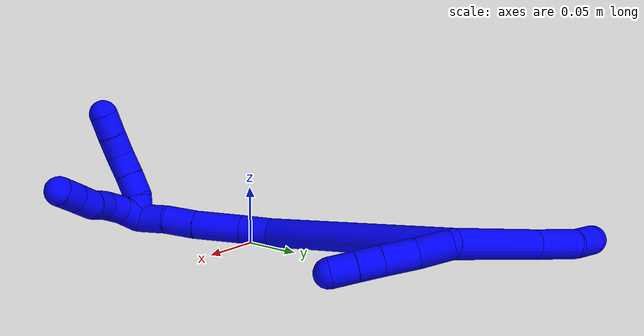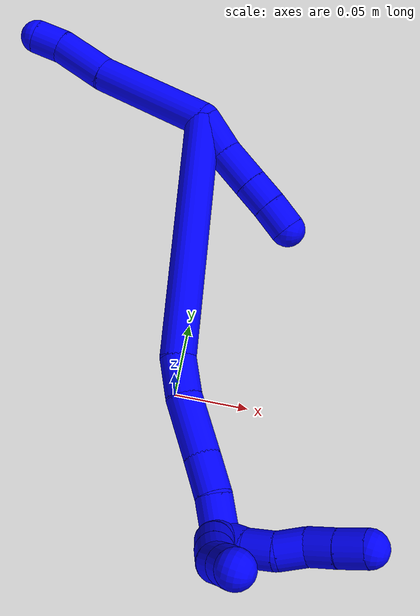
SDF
<sdf version="1.7">
 <world name="default">
  <model name="1">
   <static>0</static>
   <link name="1">
    <collision name="collision-cylinder-e_1_2_8">
     <pose>-0.000163 0.007735 0.042439 -0.180294 -0.003787 0.000342</pose>
     <geometry><cylinder><radius>0.0125</radius><length>0.086277</length></cylinder></geometry>
     <surface>
      <friction><ode><mu>1.16</mu><mu2>1.16</mu2><slip1>0</slip1><slip2>0</slip2></ode></friction>
      <contact><ode><kp>1e+06</kp><kd>1</kd><max_vel>0</max_vel><min_depth>0.001</min_depth></ode></contact>
     </surface>
    </collision>
    <visual name="visual-cylinder-e_1_2_8">
     <pose>-0.000163 0.007735 0.042439 -0.180294 -0.003787 0.000342</pose>
     <geometry><cylinder><radius>0.0125</radius><length>0.086277</length></cylinder></geometry>
     <material><ambient>0 0 1 1</ambient></material>
    </visual>
    <collision name="collision-cylinder-e_2_8_9">
     <pose>-0.000908 0.022022 0.104642 -0.320055 -0.027932 0.004509</pose>
     <geometry><cylinder><radius>0.0125</radius><length>0.041659</length></cylinder></geometry>
     <surface>
      <friction><ode><mu>1.16</mu><mu2>1.16</mu2><slip1>0</slip1><slip2>0</slip2></ode></friction>
      <contact><ode><kp>1e+06</kp><kd>1</kd><max_vel>0</max_vel><min_depth>0.001</min_depth></ode></contact>
     </surface>
    </collision>
    <visual name="visual-cylinder-e_2_8_9">
     <pose>-0.000908 0.022022 0.104642 -0.320055 -0.027932 0.004509</pose>
     <geometry><cylinder><radius>0.0125</radius><length>0.041659</length></cylinder></geometry>
     <material><ambient>0 0 1 1</ambient></material>
    </visual>
    <collision name="collision-cylinder-e_3_9_6">
     <pose>0.000438 0.030211 0.135144 -0.151407 0.175658 -0.013358</pose>
     <geometry><cylinder><radius>0.0125</radius><length>0.022064</length></cylinder></geometry>
     <surface>
      <friction><ode><mu>1.16</mu><mu2>1.16</mu2><slip1>0</slip1><slip2>0</slip2></ode></friction>
      <contact><ode><kp>1e+06</kp><kd>1</kd><max_vel>0</max_vel><min_depth>0.001</min_depth></ode></contact>
     </surface>
    </collision>
    <visual name="visual-cylinder-e_3_9_6">
     <pose>0.000438 0.030211 0.135144 -0.151407 0.175658 -0.013358</pose>
     <geometry><cylinder><radius>0.0125</radius><length>0.022064</length></cylinder></geometry>
     <material><ambient>0 0 1 1</ambient></material>
    </visual>
    <collision name="collision-cylinder-e_1_2_10">
     <pose>-0.001604 -0.009785 -0.010463 2.38966 -0.111513 -0.280928</pose>
     <geometry><cylinder><radius>0.0125</radius><length>0.028831</length></cylinder></geometry>
     <surface>
      <friction><ode><mu>1.16</mu><mu2>1.16</mu2><slip1>0</slip1><slip2>0</slip2></ode></friction>
      <contact><ode><kp>1e+06</kp><kd>1</kd><max_vel>0</max_vel><min_depth>0.001</min_depth></ode></contact>
     </surface>
    </collision>
    <visual name="visual-cylinder-e_1_2_10">
     <pose>-0.001604 -0.009785 -0.010463 2.38966 -0.111513 -0.280928</pose>
     <geometry><cylinder><radius>0.0125</radius><length>0.028831</length></cylinder></geometry>
     <material><ambient>0 0 1 1</ambient></material>
    </visual>
    <collision name="collision-cylinder-e_2_10_11">
     <pose>-0.004392 -0.027812 -0.03261 2.52726 -0.082565 -0.258978</pose>
     <geometry><cylinder><radius>0.0125</radius><length>0.028694</length></cylinder></geometry>
     <surface>
      <friction><ode><mu>1.16</mu><mu2>1.16</mu2><slip1>0</slip1><slip2>0</slip2></ode></friction>
      <contact><ode><kp>1e+06</kp><kd>1</kd><max_vel>0</max_vel><min_depth>0.001</min_depth></ode></contact>
     </surface>
    </collision>
    <visual name="visual-cylinder-e_2_10_11">
     <pose>-0.004392 -0.027812 -0.03261 2.52726 -0.082565 -0.258978</pose>
     <geometry><cylinder><radius>0.0125</radius><length>0.028694</length></cylinder></geometry>
     <material><ambient>0 0 1 1</ambient></material>
    </visual>
    <collision name="collision-cylinder-e_3_11_12">
     <pose>-0.00658 -0.042012 -0.052735 2.52696 -0.096971 -0.303434</pose>
     <geometry><cylinder><radius>0.0125</radius><length>0.020761</length></cylinder></geometry>
     <surface>
      <friction><ode><mu>1.16</mu><mu2>1.16</mu2><slip1>0</slip1><slip2>0</slip2></ode></friction>
      <contact><ode><kp>1e+06</kp><kd>1</kd><max_vel>0</max_vel><min_depth>0.001</min_depth></ode></contact>
     </surface>
    </collision>
    <visual name="visual-cylinder-e_3_11_12">
     <pose>-0.00658 -0.042012 -0.052735 2.52696 -0.096971 -0.303434</pose>
     <geometry><cylinder><radius>0.0125</radius><length>0.020761</length></cylinder></geometry>
     <material><ambient>0 0 1 1</ambient></material>
    </visual>
    <collision name="collision-cylinder-e_4_12_5">
     <pose>-0.008631 -0.054658 -0.069663 2.47416 -0.09652 -0.276844</pose>
     <geometry><cylinder><radius>0.0125</radius><length>0.021714</length></cylinder></geometry>
     <surface>
      <friction><ode><mu>1.16</mu><mu2>1.16</mu2><slip1>0</slip1><slip2>0</slip2></ode></friction>
      <contact><ode><kp>1e+06</kp><kd>1</kd><max_vel>0</max_vel><min_depth>0.001</min_depth></ode></contact>
     </surface>
    </collision>
    <visual name="visual-cylinder-e_4_12_5">
     <pose>-0.008631 -0.054658 -0.069663 2.47416 -0.09652 -0.276844</pose>
     <geometry><cylinder><radius>0.0125</radius><length>0.021714</length></cylinder></geometry>
     <material><ambient>0 0 1 1</ambient></material>
    </visual>
    <collision name="collision-cylinder-e_1_2_13">
     <pose>0.027608 -0.079701 -0.022241 1.84293 0.322038 0.421556</pose>
     <geometry><cylinder><radius>0.0125</radius><length>0.17446</length></cylinder></geometry>
     <surface>
      <friction><ode><mu>1.16</mu><mu2>1.16</mu2><slip1>0</slip1><slip2>0</slip2></ode></friction>
      <contact><ode><kp>1e+06</kp><kd>1</kd><max_vel>0</max_vel><min_depth>0.001</min_depth></ode></contact>
     </surface>
    </collision>
    <visual name="visual-cylinder-e_1_2_13">
     <pose>0.027608 -0.079701 -0.022241 1.84293 0.322038 0.421556</pose>
     <geometry><cylinder><radius>0.0125</radius><length>0.17446</length></cylinder></geometry>
     <material><ambient>0 0 1 1</ambient></material>
    </visual>
    <collision name="collision-cylinder-e_2_13_14">
     <pose>0.059821 -0.170674 -0.051588 2.1333 0.3327 0.590862</pose>
     <geometry><cylinder><radius>0.0125</radius><length>0.028197</length></cylinder></geometry>
     <surface>
      <friction><ode><mu>1.16</mu><mu2>1.16</mu2><slip1>0</slip1><slip2>0</slip2></ode></friction>
      <contact><ode><kp>1e+06</kp><kd>1</kd><max_vel>0</max_vel><min_depth>0.001</min_depth></ode></contact>
     </surface>
    </collision>
    <visual name="visual-cylinder-e_2_13_14">
     <pose>0.059821 -0.170674 -0.051588 2.1333 0.3327 0.590862</pose>
     <geometry><cylinder><radius>0.0125</radius><length>0.028197</length></cylinder></geometry>
     <material><ambient>0 0 1 1</ambient></material>
    </visual>
    <collision name="collision-cylinder-e_3_14_15">
     <pose>0.070504 -0.197557 -0.071947 2.27464 0.288553 0.608328</pose>
     <geometry><cylinder><radius>0.0125</radius><length>0.042722</length></cylinder></geometry>
     <surface>
      <friction><ode><mu>1.16</mu><mu2>1.16</mu2><slip1>0</slip1><slip2>0</slip2></ode></friction>
      <contact><ode><kp>1e+06</kp><kd>1</kd><max_vel>0</max_vel><min_depth>0.001</min_depth></ode></contact>
     </surface>
    </collision>
    <visual name="visual-cylinder-e_3_14_15">
     <pose>0.070504 -0.197557 -0.071947 2.27464 0.288553 0.608328</pose>
     <geometry><cylinder><radius>0.0125</radius><length>0.042722</length></cylinder></geometry>
     <material><ambient>0 0 1 1</ambient></material>
    </visual>
    <collision name="collision-cylinder-e_4_15_16">
     <pose>0.081392 -0.222743 -0.093694 2.29654 0.359391 0.767954</pose>
     <geometry><cylinder><radius>0.0125</radius><length>0.027347</length></cylinder></geometry>
     <surface>
      <friction><ode><mu>1.16</mu><mu2>1.16</mu2><slip1>0</slip1><slip2>0</slip2></ode></friction>
      <contact><ode><kp>1e+06</kp><kd>1</kd><max_vel>0</max_vel><min_depth>0.001</min_depth></ode></contact>
     </surface>
    </collision>
    <visual name="visual-cylinder-e_4_15_16">
     <pose>0.081392 -0.222743 -0.093694 2.29654 0.359391 0.767954</pose>
     <geometry><cylinder><radius>0.0125</radius><length>0.027347</length></cylinder></geometry>
     <material><ambient>0 0 1 1</ambient></material>
    </visual>
    <collision name="collision-cylinder-e_5_16_1">
     <pose>0.090024 -0.243426 -0.109114 2.12826 0.284156 0.504497</pose>
     <geometry><cylinder><radius>0.0125</radius><length>0.027275</length></cylinder></geometry>
     <surface>
      <friction><ode><mu>1.16</mu><mu2>1.16</mu2><slip1>0</slip1><slip2>0</slip2></ode></friction>
      <contact><ode><kp>1e+06</kp><kd>1</kd><max_vel>0</max_vel><min_depth>0.001</min_depth></ode></contact>
     </surface>
    </collision>
    <visual name="visual-cylinder-e_5_16_1">
     <pose>0.090024 -0.243426 -0.109114 2.12826 0.284156 0.504497</pose>
     <geometry><cylinder><radius>0.0125</radius><length>0.027275</length></cylinder></geometry>
     <material><ambient>0 0 1 1</ambient></material>
    </visual>
    <collision name="collision-cylinder-e_1_1_17">
     <pose>0.103568 -0.252369 -0.116946 -1.96712 1.33387 -1.73796</pose>
     <geometry><cylinder><radius>0.0125</radius><length>0.02</length></cylinder></geometry>
     <surface>
      <friction><ode><mu>1.16</mu><mu2>1.16</mu2><slip1>0</slip1><slip2>0</slip2></ode></friction>
      <contact><ode><kp>1e+06</kp><kd>1</kd><max_vel>0</max_vel><min_depth>0.001</min_depth></ode></contact>
     </surface>
    </collision>
    <visual name="visual-cylinder-e_1_1_17">
     <pose>0.103568 -0.252369 -0.116946 -1.96712 1.33387 -1.73796</pose>
     <geometry><cylinder><radius>0.0125</radius><length>0.02</length></cylinder></geometry>
     <material><ambient>0 0 1 1</ambient></material>
    </visual>
    <collision name="collision-cylinder-e_2_17_18">
     <pose>0.12258 -0.2497 -0.121513 -3.00495 1.19228 -2.94056</pose>
     <geometry><cylinder><radius>0.0125</radius><length>0.02</length></cylinder></geometry>
     <surface>
      <friction><ode><mu>1.16</mu><mu2>1.16</mu2><slip1>0</slip1><slip2>0</slip2></ode></friction>
      <contact><ode><kp>1e+06</kp><kd>1</kd><max_vel>0</max_vel><min_depth>0.001</min_depth></ode></contact>
     </surface>
    </collision>
    <visual name="visual-cylinder-e_2_17_18">
     <pose>0.12258 -0.2497 -0.121513 -3.00495 1.19228 -2.94056</pose>
     <geometry><cylinder><radius>0.0125</radius><length>0.02</length></cylinder></geometry>
     <material><ambient>0 0 1 1</ambient></material>
    </visual>
    <collision name="collision-cylinder-e_3_18_19">
     <pose>0.141009 -0.24881 -0.12922 -3.04622 1.15223 -2.99493</pose>
     <geometry><cylinder><radius>0.0125</radius><length>0.02</length></cylinder></geometry>
     <surface>
      <friction><ode><mu>1.16</mu><mu2>1.16</mu2><slip1>0</slip1><slip2>0</slip2></ode></friction>
      <contact><ode><kp>1e+06</kp><kd>1</kd><max_vel>0</max_vel><min_depth>0.001</min_depth></ode></contact>
     </surface>
    </collision>
    <visual name="visual-cylinder-e_3_18_19">
     <pose>0.141009 -0.24881 -0.12922 -3.04622 1.15223 -2.99493</pose>
     <geometry><cylinder><radius>0.0125</radius><length>0.02</length></cylinder></geometry>
     <material><ambient>0 0 1 1</ambient></material>
    </visual>
    <collision name="collision-cylinder-e_4_19_20">
     <pose>0.157939 -0.24521 -0.138646 -2.60326 0.893497 -2.09666</pose>
     <geometry><cylinder><radius>0.0125</radius><length>0.02</length></cylinder></geometry>
     <surface>
      <friction><ode><mu>1.16</mu><mu2>1.16</mu2><slip1>0</slip1><slip2>0</slip2></ode></friction>
      <contact><ode><kp>1e+06</kp><kd>1</kd><max_vel>0</max_vel><min_depth>0.001</min_depth></ode></contact>
     </surface>
    </collision>
    <visual name="visual-cylinder-e_4_19_20">
     <pose>0.157939 -0.24521 -0.138646 -2.60326 0.893497 -2.09666</pose>
     <geometry><cylinder><radius>0.0125</radius><length>0.02</length></cylinder></geometry>
     <material><ambient>0 0 1 1</ambient></material>
    </visual>
    <collision name="collision-cylinder-e_5_20_4">
     <pose>0.173818 -0.238978 -0.149076 -2.60281 0.941847 -2.14776</pose>
     <geometry><cylinder><radius>0.0125</radius><length>0.02</length></cylinder></geometry>
     <surface>
      <friction><ode><mu>1.16</mu><mu2>1.16</mu2><slip1>0</slip1><slip2>0</slip2></ode></friction>
      <contact><ode><kp>1e+06</kp><kd>1</kd><max_vel>0</max_vel><min_depth>0.001</min_depth></ode></contact>
     </surface>
    </collision>
    <visual name="visual-cylinder-e_5_20_4">
     <pose>0.173818 -0.238978 -0.149076 -2.60281 0.941847 -2.14776</pose>
     <geometry><cylinder><radius>0.0125</radius><length>0.02</length></cylinder></geometry>
     <material><ambient>0 0 1 1</ambient></material>
    </visual>
    <collision name="collision-cylinder-e_1_1_21">
     <pose>0.096612 -0.253384 -0.125581 -3.0216 0.280194 -2.33621</pose>
     <geometry><cylinder><radius>0.0125</radius><length>0.02</length></cylinder></geometry>
     <surface>
      <friction><ode><mu>1.16</mu><mu2>1.16</mu2><slip1>0</slip1><slip2>0</slip2></ode></friction>
      <contact><ode><kp>1e+06</kp><kd>1</kd><max_vel>0</max_vel><min_depth>0.001</min_depth></ode></contact>
     </surface>
    </collision>
    <visual name="visual-cylinder-e_1_1_21">
     <pose>0.096612 -0.253384 -0.125581 -3.0216 0.280194 -2.33621</pose>
     <geometry><cylinder><radius>0.0125</radius><length>0.02</length></cylinder></geometry>
     <material><ambient>0 0 1 1</ambient></material>
    </visual>
    <collision name="collision-cylinder-e_2_21_22">
     <pose>0.099712 -0.249768 -0.144807 -2.89232 0.033453 -0.265466</pose>
     <geometry><cylinder><radius>0.0125</radius><length>0.02</length></cylinder></geometry>
     <surface>
      <friction><ode><mu>1.16</mu><mu2>1.16</mu2><slip1>0</slip1><slip2>0</slip2></ode></friction>
      <contact><ode><kp>1e+06</kp><kd>1</kd><max_vel>0</max_vel><min_depth>0.001</min_depth></ode></contact>
     </surface>
    </collision>
    <visual name="visual-cylinder-e_2_21_22">
     <pose>0.099712 -0.249768 -0.144807 -2.89232 0.033453 -0.265466</pose>
     <geometry><cylinder><radius>0.0125</radius><length>0.02</length></cylinder></geometry>
     <material><ambient>0 0 1 1</ambient></material>
    </visual>
    <collision name="collision-cylinder-e_3_22_23">
     <pose>0.098088 -0.242996 -0.163303 -2.68698 -0.197187 0.80821</pose>
     <geometry><cylinder><radius>0.0125</radius><length>0.02</length></cylinder></geometry>
     <surface>
      <friction><ode><mu>1.16</mu><mu2>1.16</mu2><slip1>0</slip1><slip2>0</slip2></ode></friction>
      <contact><ode><kp>1e+06</kp><kd>1</kd><max_vel>0</max_vel><min_depth>0.001</min_depth></ode></contact>
     </surface>
    </collision>
    <visual name="visual-cylinder-e_3_22_23">
     <pose>0.098088 -0.242996 -0.163303 -2.68698 -0.197187 0.80821</pose>
     <geometry><cylinder><radius>0.0125</radius><length>0.02</length></cylinder></geometry>
     <material><ambient>0 0 1 1</ambient></material>
    </visual>
    <collision name="collision-cylinder-e_4_23_24">
     <pose>0.097349 -0.235458 -0.181497 -2.80993 0.122336 -0.701585</pose>
     <geometry><cylinder><radius>0.0125</radius><length>0.02</length></cylinder></geometry>
     <surface>
      <friction><ode><mu>1.16</mu><mu2>1.16</mu2><slip1>0</slip1><slip2>0</slip2></ode></friction>
      <contact><ode><kp>1e+06</kp><kd>1</kd><max_vel>0</max_vel><min_depth>0.001</min_depth></ode></contact>
     </surface>
    </collision>
    <visual name="visual-cylinder-e_4_23_24">
     <pose>0.097349 -0.235458 -0.181497 -2.80993 0.122336 -0.701585</pose>
     <geometry><cylinder><radius>0.0125</radius><length>0.02</length></cylinder></geometry>
     <material><ambient>0 0 1 1</ambient></material>
    </visual>
    <collision name="collision-cylinder-e_5_24_3">
     <pose>0.099402 -0.22871 -0.200206 -2.78097 0.083356 -0.449795</pose>
     <geometry><cylinder><radius>0.0125</radius><length>0.02</length></cylinder></geometry>
     <surface>
      <friction><ode><mu>1.16</mu><mu2>1.16</mu2><slip1>0</slip1><slip2>0</slip2></ode></friction>
      <contact><ode><kp>1e+06</kp><kd>1</kd><max_vel>0</max_vel><min_depth>0.001</min_depth></ode></contact>
     </surface>
    </collision>
    <visual name="visual-cylinder-e_5_24_3">
     <pose>0.099402 -0.22871 -0.200206 -2.78097 0.083356 -0.449795</pose>
     <geometry><cylinder><radius>0.0125</radius><length>0.02</length></cylinder></geometry>
     <material><ambient>0 0 1 1</ambient></material>
    </visual>
    <collision name="collision-sphere-3">
     <pose>0.100234 -0.225194 -0.20953 0 -0 0</pose>
     <geometry><sphere><radius>0.0125</radius></sphere></geometry>
     <surface>
      <friction><ode><mu>1.16</mu><mu2>1.16</mu2><slip1>0</slip1><slip2>0</slip2></ode></friction>
      <contact><ode><kp>1e+06</kp><kd>1</kd><max_vel>0</max_vel><min_depth>0.001</min_depth></ode></contact>
     </surface>
    </collision>
    <visual name="visual-sphere-3">
     <pose>0.100234 -0.225194 -0.20953 0 -0 0</pose>
     <geometry><sphere><radius>0.0125</radius></sphere></geometry>
     <material><ambient>0 0 1 1</ambient></material>
    </visual>
    <collision name="collision-sphere-24">
     <pose>0.098569 -0.232227 -0.190882 0 -0 0</pose>
     <geometry><sphere><radius>0.0125</radius></sphere></geometry>
     <surface>
      <friction><ode><mu>1.16</mu><mu2>1.16</mu2><slip1>0</slip1><slip2>0</slip2></ode></friction>
      <contact><ode><kp>1e+06</kp><kd>1</kd><max_vel>0</max_vel><min_depth>0.001</min_depth></ode></contact>
     </surface>
    </collision>
    <visual name="visual-sphere-24">
     <pose>0.098569 -0.232227 -0.190882 0 -0 0</pose>
     <geometry><sphere><radius>0.0125</radius></sphere></geometry>
     <material><ambient>0 0 1 1</ambient></material>
    </visual>
    <collision name="collision-sphere-23">
     <pose>0.096129 -0.23869 -0.172113 0 -0 0</pose>
     <geometry><sphere><radius>0.0125</radius></sphere></geometry>
     <surface>
      <friction><ode><mu>1.16</mu><mu2>1.16</mu2><slip1>0</slip1><slip2>0</slip2></ode></friction>
      <contact><ode><kp>1e+06</kp><kd>1</kd><max_vel>0</max_vel><min_depth>0.001</min_depth></ode></contact>
     </surface>
    </collision>
    <visual name="visual-sphere-23">
     <pose>0.096129 -0.23869 -0.172113 0 -0 0</pose>
     <geometry><sphere><radius>0.0125</radius></sphere></geometry>
     <material><ambient>0 0 1 1</ambient></material>
    </visual>
    <collision name="collision-sphere-22">
     <pose>0.100047 -0.247302 -0.154493 0 -0 0</pose>
     <geometry><sphere><radius>0.0125</radius></sphere></geometry>
     <surface>
      <friction><ode><mu>1.16</mu><mu2>1.16</mu2><slip1>0</slip1><slip2>0</slip2></ode></friction>
      <contact><ode><kp>1e+06</kp><kd>1</kd><max_vel>0</max_vel><min_depth>0.001</min_depth></ode></contact>
     </surface>
    </collision>
    <visual name="visual-sphere-22">
     <pose>0.100047 -0.247302 -0.154493 0 -0 0</pose>
     <geometry><sphere><radius>0.0125</radius></sphere></geometry>
     <material><ambient>0 0 1 1</ambient></material>
    </visual>
    <collision name="collision-sphere-21">
     <pose>0.099378 -0.252234 -0.135122 0 -0 0</pose>
     <geometry><sphere><radius>0.0125</radius></sphere></geometry>
     <surface>
      <friction><ode><mu>1.16</mu><mu2>1.16</mu2><slip1>0</slip1><slip2>0</slip2></ode></friction>
      <contact><ode><kp>1e+06</kp><kd>1</kd><max_vel>0</max_vel><min_depth>0.001</min_depth></ode></contact>
     </surface>
    </collision>
    <visual name="visual-sphere-21">
     <pose>0.099378 -0.252234 -0.135122 0 -0 0</pose>
     <geometry><sphere><radius>0.0125</radius></sphere></geometry>
     <material><ambient>0 0 1 1</ambient></material>
    </visual>
    <collision name="collision-sphere-4">
     <pose>0.181904 -0.23596 -0.154126 0 -0 0</pose>
     <geometry><sphere><radius>0.0125</radius></sphere></geometry>
     <surface>
      <friction><ode><mu>1.16</mu><mu2>1.16</mu2><slip1>0</slip1><slip2>0</slip2></ode></friction>
      <contact><ode><kp>1e+06</kp><kd>1</kd><max_vel>0</max_vel><min_depth>0.001</min_depth></ode></contact>
     </surface>
    </collision>
    <visual name="visual-sphere-4">
     <pose>0.181904 -0.23596 -0.154126 0 -0 0</pose>
     <geometry><sphere><radius>0.0125</radius></sphere></geometry>
     <material><ambient>0 0 1 1</ambient></material>
    </visual>
    <collision name="collision-sphere-20">
     <pose>0.165731 -0.241997 -0.144027 0 -0 0</pose>
     <geometry><sphere><radius>0.0125</radius></sphere></geometry>
     <surface>
      <friction><ode><mu>1.16</mu><mu2>1.16</mu2><slip1>0</slip1><slip2>0</slip2></ode></friction>
      <contact><ode><kp>1e+06</kp><kd>1</kd><max_vel>0</max_vel><min_depth>0.001</min_depth></ode></contact>
     </surface>
    </collision>
    <visual name="visual-sphere-20">
     <pose>0.165731 -0.241997 -0.144027 0 -0 0</pose>
     <geometry><sphere><radius>0.0125</radius></sphere></geometry>
     <material><ambient>0 0 1 1</ambient></material>
    </visual>
    <collision name="collision-sphere-11">
     <pose>-0.005575 -0.036054 -0.044294 0 -0 0</pose>
     <geometry><sphere><radius>0.0125</radius></sphere></geometry>
     <surface>
      <friction><ode><mu>1.16</mu><mu2>1.16</mu2><slip1>0</slip1><slip2>0</slip2></ode></friction>
      <contact><ode><kp>1e+06</kp><kd>1</kd><max_vel>0</max_vel><min_depth>0.001</min_depth></ode></contact>
     </surface>
    </collision>
    <visual name="visual-sphere-11">
     <pose>-0.005575 -0.036054 -0.044294 0 -0 0</pose>
     <geometry><sphere><radius>0.0125</radius></sphere></geometry>
     <material><ambient>0 0 1 1</ambient></material>
    </visual>
    <collision name="collision-sphere-10">
     <pose>-0.003208 -0.01957 -0.020926 0 -0 0</pose>
     <geometry><sphere><radius>0.0125</radius></sphere></geometry>
     <surface>
      <friction><ode><mu>1.16</mu><mu2>1.16</mu2><slip1>0</slip1><slip2>0</slip2></ode></friction>
      <contact><ode><kp>1e+06</kp><kd>1</kd><max_vel>0</max_vel><min_depth>0.001</min_depth></ode></contact>
     </surface>
    </collision>
    <visual name="visual-sphere-10">
     <pose>-0.003208 -0.01957 -0.020926 0 -0 0</pose>
     <geometry><sphere><radius>0.0125</radius></sphere></geometry>
     <material><ambient>0 0 1 1</ambient></material>
    </visual>
    <collision name="collision-sphere-6">
     <pose>0.002366 0.031849 0.145882 0 -0 0</pose>
     <geometry><sphere><radius>0.0125</radius></sphere></geometry>
     <surface>
      <friction><ode><mu>1.16</mu><mu2>1.16</mu2><slip1>0</slip1><slip2>0</slip2></ode></friction>
      <contact><ode><kp>1e+06</kp><kd>1</kd><max_vel>0</max_vel><min_depth>0.001</min_depth></ode></contact>
     </surface>
    </collision>
    <visual name="visual-sphere-6">
     <pose>0.002366 0.031849 0.145882 0 -0 0</pose>
     <geometry><sphere><radius>0.0125</radius></sphere></geometry>
     <material><ambient>0 0 1 1</ambient></material>
    </visual>
    <collision name="collision-sphere-9">
     <pose>-0.00149 0.028572 0.124406 0 -0 0</pose>
     <geometry><sphere><radius>0.0125</radius></sphere></geometry>
     <surface>
      <friction><ode><mu>1.16</mu><mu2>1.16</mu2><slip1>0</slip1><slip2>0</slip2></ode></friction>
      <contact><ode><kp>1e+06</kp><kd>1</kd><max_vel>0</max_vel><min_depth>0.001</min_depth></ode></contact>
     </surface>
    </collision>
    <visual name="visual-sphere-9">
     <pose>-0.00149 0.028572 0.124406 0 -0 0</pose>
     <geometry><sphere><radius>0.0125</radius></sphere></geometry>
     <material><ambient>0 0 1 1</ambient></material>
    </visual>
    <collision name="collision-sphere-2">
     <geometry><sphere><radius>0.0125</radius></sphere></geometry>
     <surface>
      <friction><ode><mu>1.16</mu><mu2>1.16</mu2><slip1>0</slip1><slip2>0</slip2></ode></friction>
      <contact><ode><kp>1e+06</kp><kd>1</kd><max_vel>0</max_vel><min_depth>0.001</min_depth></ode></contact>
     </surface>
    </collision>
    <visual name="visual-sphere-2">
     <geometry><sphere><radius>0.0125</radius></sphere></geometry>
     <material><ambient>0 0 1 1</ambient></material>
    </visual>
    <collision name="collision-sphere-19">
     <pose>0.150146 -0.248423 -0.133266 0 -0 0</pose>
     <geometry><sphere><radius>0.0125</radius></sphere></geometry>
     <surface>
      <friction><ode><mu>1.16</mu><mu2>1.16</mu2><slip1>0</slip1><slip2>0</slip2></ode></friction>
      <contact><ode><kp>1e+06</kp><kd>1</kd><max_vel>0</max_vel><min_depth>0.001</min_depth></ode></contact>
     </surface>
    </collision>
    <visual name="visual-sphere-19">
     <pose>0.150146 -0.248423 -0.133266 0 -0 0</pose>
     <geometry><sphere><radius>0.0125</radius></sphere></geometry>
     <material><ambient>0 0 1 1</ambient></material>
    </visual>
    <collision name="collision-sphere-8">
     <pose>-0.000327 0.015471 0.084878 0 -0 0</pose>
     <geometry><sphere><radius>0.0125</radius></sphere></geometry>
     <surface>
      <friction><ode><mu>1.16</mu><mu2>1.16</mu2><slip1>0</slip1><slip2>0</slip2></ode></friction>
      <contact><ode><kp>1e+06</kp><kd>1</kd><max_vel>0</max_vel><min_depth>0.001</min_depth></ode></contact>
     </surface>
    </collision>
    <visual name="visual-sphere-8">
     <pose>-0.000327 0.015471 0.084878 0 -0 0</pose>
     <geometry><sphere><radius>0.0125</radius></sphere></geometry>
     <material><ambient>0 0 1 1</ambient></material>
    </visual>
    <collision name="collision-sphere-12">
     <pose>-0.007585 -0.047969 -0.061176 0 -0 0</pose>
     <geometry><sphere><radius>0.0125</radius></sphere></geometry>
     <surface>
      <friction><ode><mu>1.16</mu><mu2>1.16</mu2><slip1>0</slip1><slip2>0</slip2></ode></friction>
      <contact><ode><kp>1e+06</kp><kd>1</kd><max_vel>0</max_vel><min_depth>0.001</min_depth></ode></contact>
     </surface>
    </collision>
    <visual name="visual-sphere-12">
     <pose>-0.007585 -0.047969 -0.061176 0 -0 0</pose>
     <geometry><sphere><radius>0.0125</radius></sphere></geometry>
     <material><ambient>0 0 1 1</ambient></material>
    </visual>
    <collision name="collision-sphere-5">
     <pose>-0.009677 -0.061348 -0.078151 0 -0 0</pose>
     <geometry><sphere><radius>0.0125</radius></sphere></geometry>
     <surface>
      <friction><ode><mu>1.16</mu><mu2>1.16</mu2><slip1>0</slip1><slip2>0</slip2></ode></friction>
      <contact><ode><kp>1e+06</kp><kd>1</kd><max_vel>0</max_vel><min_depth>0.001</min_depth></ode></contact>
     </surface>
    </collision>
    <visual name="visual-sphere-5">
     <pose>-0.009677 -0.061348 -0.078151 0 -0 0</pose>
     <geometry><sphere><radius>0.0125</radius></sphere></geometry>
     <material><ambient>0 0 1 1</ambient></material>
    </visual>
    <collision name="collision-sphere-13">
     <pose>0.055217 -0.159402 -0.044481 0 -0 0</pose>
     <geometry><sphere><radius>0.0125</radius></sphere></geometry>
     <surface>
      <friction><ode><mu>1.16</mu><mu2>1.16</mu2><slip1>0</slip1><slip2>0</slip2></ode></friction>
      <contact><ode><kp>1e+06</kp><kd>1</kd><max_vel>0</max_vel><min_depth>0.001</min_depth></ode></contact>
     </surface>
    </collision>
    <visual name="visual-sphere-13">
     <pose>0.055217 -0.159402 -0.044481 0 -0 0</pose>
     <geometry><sphere><radius>0.0125</radius></sphere></geometry>
     <material><ambient>0 0 1 1</ambient></material>
    </visual>
    <collision name="collision-sphere-14">
     <pose>0.064426 -0.181946 -0.058694 0 -0 0</pose>
     <geometry><sphere><radius>0.0125</radius></sphere></geometry>
     <surface>
      <friction><ode><mu>1.16</mu><mu2>1.16</mu2><slip1>0</slip1><slip2>0</slip2></ode></friction>
      <contact><ode><kp>1e+06</kp><kd>1</kd><max_vel>0</max_vel><min_depth>0.001</min_depth></ode></contact>
     </surface>
    </collision>
    <visual name="visual-sphere-14">
     <pose>0.064426 -0.181946 -0.058694 0 -0 0</pose>
     <geometry><sphere><radius>0.0125</radius></sphere></geometry>
     <material><ambient>0 0 1 1</ambient></material>
    </visual>
    <collision name="collision-sphere-15">
     <pose>0.076583 -0.213169 -0.085199 0 -0 0</pose>
     <geometry><sphere><radius>0.0125</radius></sphere></geometry>
     <surface>
      <friction><ode><mu>1.16</mu><mu2>1.16</mu2><slip1>0</slip1><slip2>0</slip2></ode></friction>
      <contact><ode><kp>1e+06</kp><kd>1</kd><max_vel>0</max_vel><min_depth>0.001</min_depth></ode></contact>
     </surface>
    </collision>
    <visual name="visual-sphere-15">
     <pose>0.076583 -0.213169 -0.085199 0 -0 0</pose>
     <geometry><sphere><radius>0.0125</radius></sphere></geometry>
     <material><ambient>0 0 1 1</ambient></material>
    </visual>
    <collision name="collision-sphere-16">
     <pose>0.086201 -0.232317 -0.102189 0 -0 0</pose>
     <geometry><sphere><radius>0.0125</radius></sphere></geometry>
     <surface>
      <friction><ode><mu>1.16</mu><mu2>1.16</mu2><slip1>0</slip1><slip2>0</slip2></ode></friction>
      <contact><ode><kp>1e+06</kp><kd>1</kd><max_vel>0</max_vel><min_depth>0.001</min_depth></ode></contact>
     </surface>
    </collision>
    <visual name="visual-sphere-16">
     <pose>0.086201 -0.232317 -0.102189 0 -0 0</pose>
     <geometry><sphere><radius>0.0125</radius></sphere></geometry>
     <material><ambient>0 0 1 1</ambient></material>
    </visual>
    <collision name="collision-sphere-1">
     <pose>0.093847 -0.254534 -0.11604 0 -0 0</pose>
     <geometry><sphere><radius>0.0125</radius></sphere></geometry>
     <surface>
      <friction><ode><mu>1.16</mu><mu2>1.16</mu2><slip1>0</slip1><slip2>0</slip2></ode></friction>
      <contact><ode><kp>1e+06</kp><kd>1</kd><max_vel>0</max_vel><min_depth>0.001</min_depth></ode></contact>
     </surface>
    </collision>
    <visual name="visual-sphere-1">
     <pose>0.093847 -0.254534 -0.11604 0 -0 0</pose>
     <geometry><sphere><radius>0.0125</radius></sphere></geometry>
     <material><ambient>0 0 1 1</ambient></material>
    </visual>
    <collision name="collision-sphere-18">
     <pose>0.131873 -0.249197 -0.125174 0 -0 0</pose>
     <geometry><sphere><radius>0.0125</radius></sphere></geometry>
     <surface>
      <friction><ode><mu>1.16</mu><mu2>1.16</mu2><slip1>0</slip1><slip2>0</slip2></ode></friction>
      <contact><ode><kp>1e+06</kp><kd>1</kd><max_vel>0</max_vel><min_depth>0.001</min_depth></ode></contact>
     </surface>
    </collision>
    <visual name="visual-sphere-18">
     <pose>0.131873 -0.249197 -0.125174 0 -0 0</pose>
     <geometry><sphere><radius>0.0125</radius></sphere></geometry>
     <material><ambient>0 0 1 1</ambient></material>
    </visual>
    <collision name="collision-sphere-17">
     <pose>0.113288 -0.250204 -0.117852 0 -0 0</pose>
     <geometry><sphere><radius>0.0125</radius></sphere></geometry>
     <surface>
      <friction><ode><mu>1.16</mu><mu2>1.16</mu2><slip1>0</slip1><slip2>0</slip2></ode></friction>
      <contact><ode><kp>1e+06</kp><kd>1</kd><max_vel>0</max_vel><min_depth>0.001</min_depth></ode></contact>
     </surface>
    </collision>
    <visual name="visual-sphere-17">
     <pose>0.113288 -0.250204 -0.117852 0 -0 0</pose>
     <geometry><sphere><radius>0.0125</radius></sphere></geometry>
     <material><ambient>0 0 1 1</ambient></material>
    </visual>
    <inertial>
     <pose>0.049946 -0.119578 -0.048273 0 -0 0</pose>
     <mass>0.75</mass>
     <inertia><ixx>0.00067</ixx><ixy>0</ixy><ixz>0</ixz><iyy>0.00016</iyy><iyz>0</iyz><izz>0.000245</izz></inertia>
    </inertial>
   </link>
   <pose>-0.019255 0.195488 0.029605 2.04604 -1.0152 -2.17859</pose>
  </model>
 </world>
</sdf>
